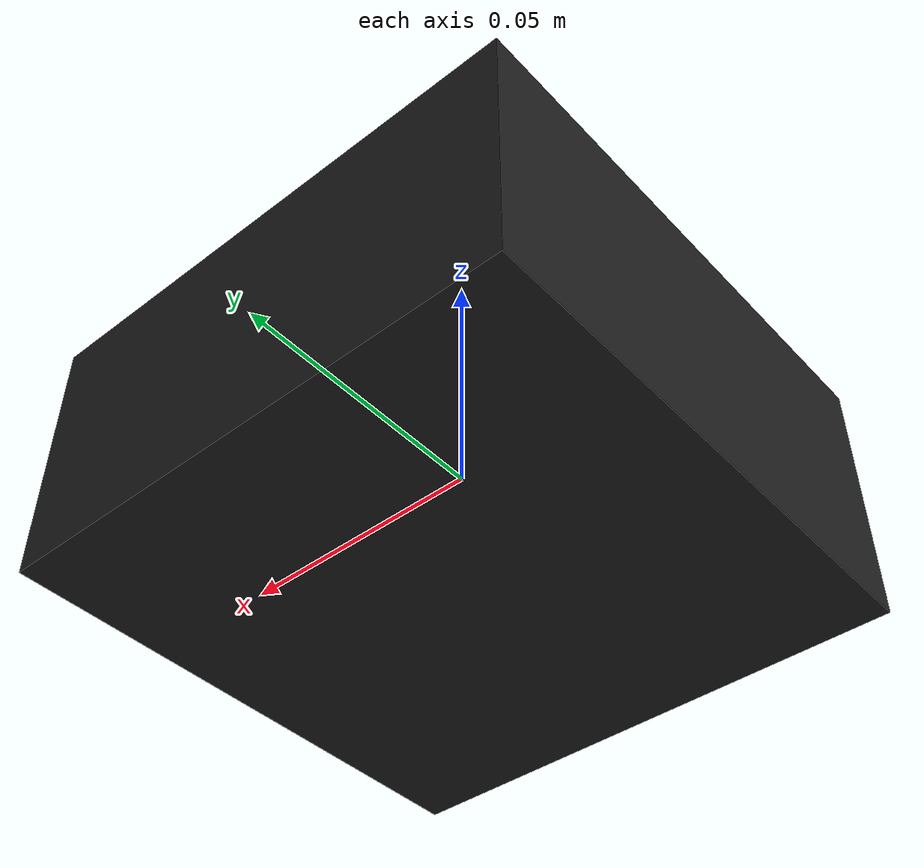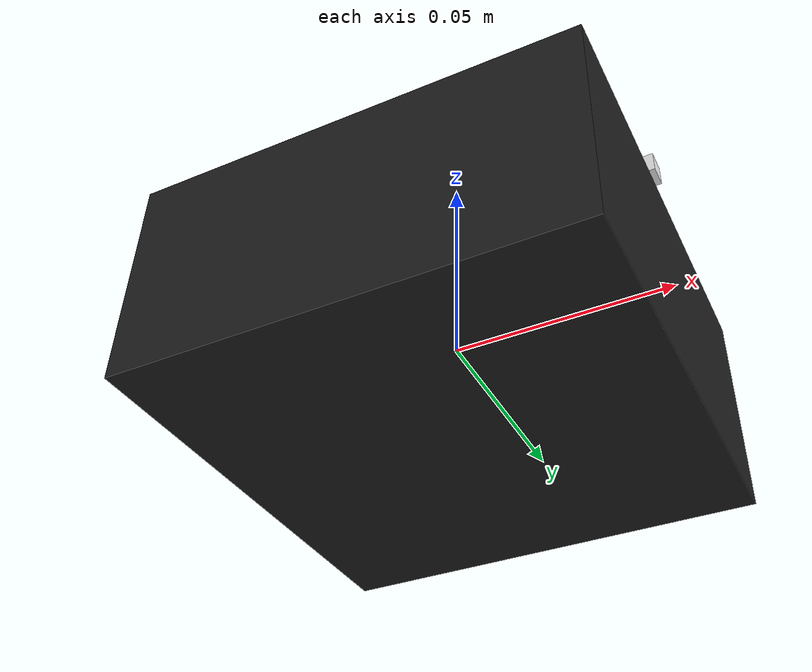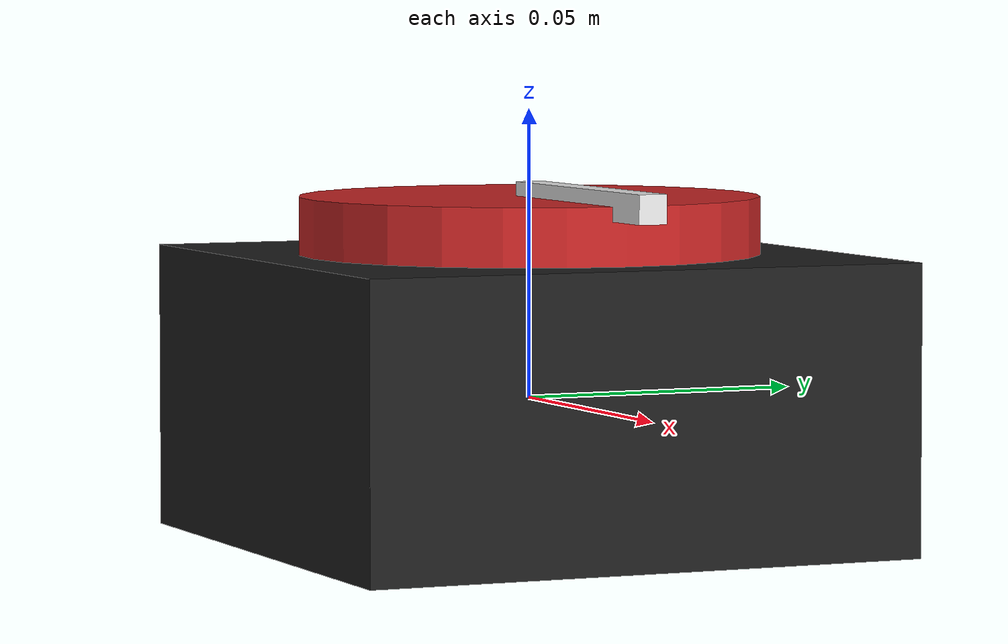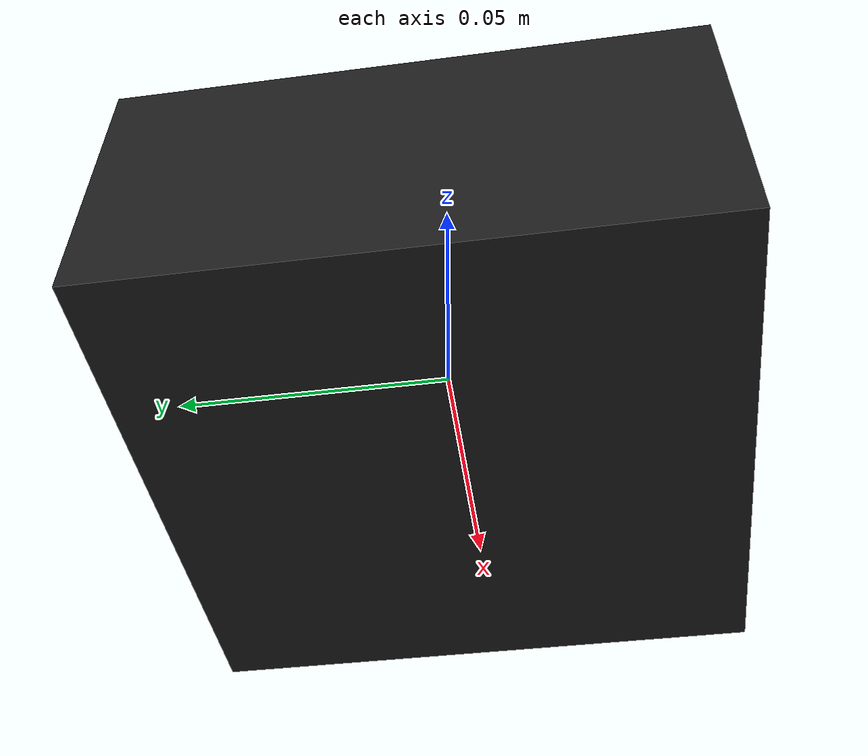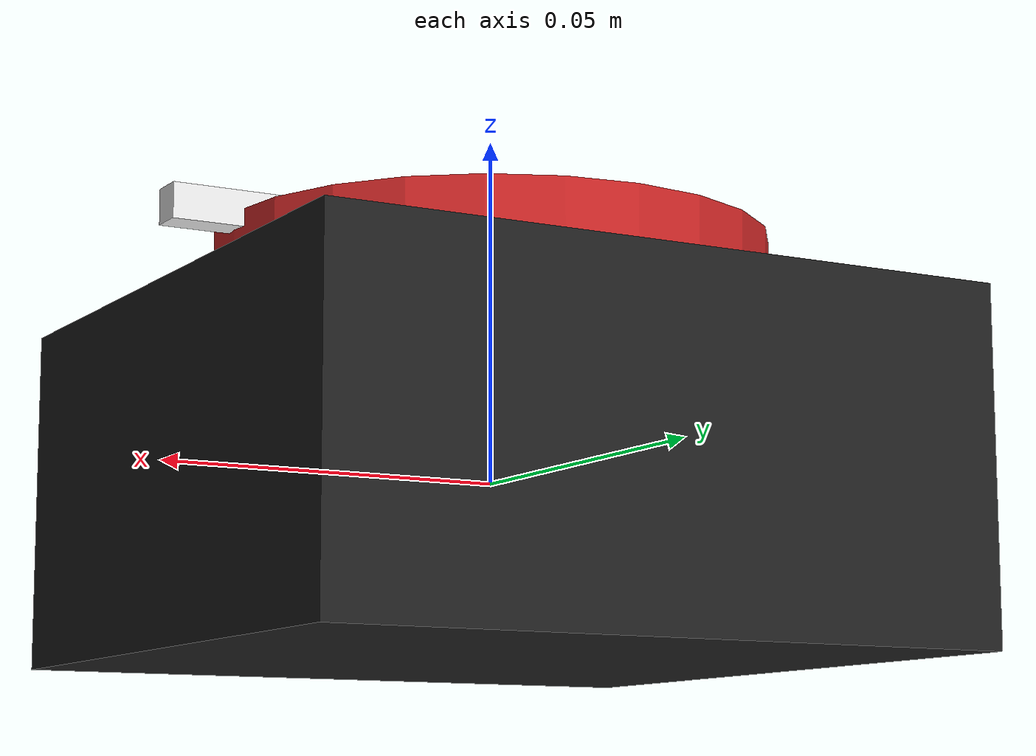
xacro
<?xml version="1.0"?>
<robot name="controlled_qube" xmlns:xacro="http://www.ros.org/wiki/xacro">

  <!-- Argumenter -->
  <xacro:arg name="baud_rate" default="115200" />
  <xacro:arg name="device" default="/dev/ttyACM0" />
  <xacro:arg name="simulation" default="false" />

  <!-- Inkluder makro -->
  <xacro:include filename="$(find qube_description)/urdf/qube.macro.xacro"/>
  <xacro:include filename="$(find qube_driver)/ros2_control/qube_driver.ros2_control.xacro"/>

  <!-- Kall Qube-beskrivelsen -->
  <xacro:qube base_length="0.1" base_width="0.1" base_height="0.05"
              disk_radius="0.04" disk_height="0.01"
              pointer_length="0.05" pointer_width="0.005"/>

  <!-- world link -->
  <link name="world"/>

  <!-- world-to-base joint -->
  <joint name="world_to_base" type="fixed">
    <parent link="world"/>
    <child link="base_link"/>
    <origin xyz="0 0 0" rpy="0 0 0"/>
  </joint>

  <!-- Koble til ros2_control -->
  <xacro:qube_driver_ros2_control
      name="qube_driver"
      prefix=""
      baud_rate="$(arg baud_rate)"
      device="$(arg device)"
      simulation="$(arg simulation)" />

</robot>

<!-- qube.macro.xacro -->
<robot xmlns:xacro="http://www.ros.org/wiki/xacro">
  <xacro:macro name="qube" params="base_length base_width base_height disk_radius disk_height pointer_length pointer_width">

    <!-- base -->
    <link name="base_link">
      <visual>
        <geometry>
          <box size="${base_length} ${base_width} ${base_height}" />
        </geometry>
        <material name="black" />
      </visual>
    </link>

    <!-- disk -->
    <link name="disk_link">
      <visual>
        <geometry>
          <cylinder radius="${disk_radius}" length="${disk_height}" />
        </geometry>
        <material name="red" />
      </visual>
    </link>

    <joint name="motor_joint" type="continuous">
      <parent link="base_link" />
      <child link="disk_link" />
      <origin xyz="0 0 ${base_height/2 + disk_height/2}" rpy="0 0 0" />
      <axis xyz="0 0 1" />
    </joint>

    <!-- pointer -->
    <link name="pointer_link">
      <visual>
        <geometry>
          <box size="${pointer_length} ${pointer_width} ${disk_height/2}" />
        </geometry>
        <material name="white" />
      </visual>
    </link>

    <joint name="pointer_joint" type="fixed">
      <parent link="disk_link" />
      <child link="pointer_link" />
      <origin xyz="${pointer_length/2} 0 ${disk_height/2}" rpy="0 0 0" />
    </joint>

  </xacro:macro>
</robot>
